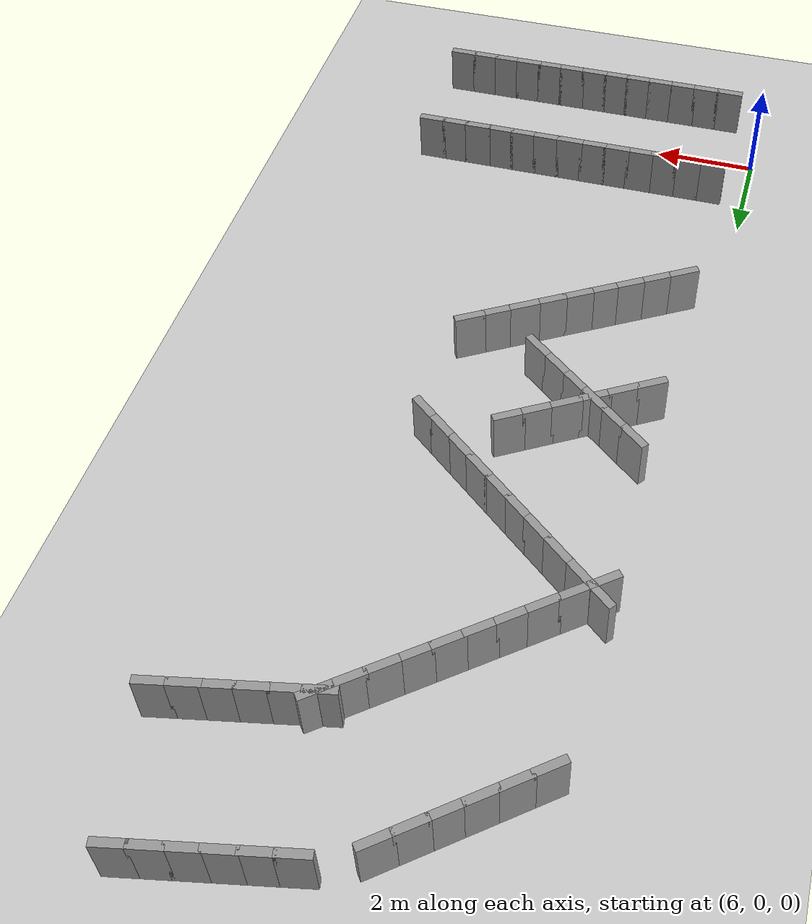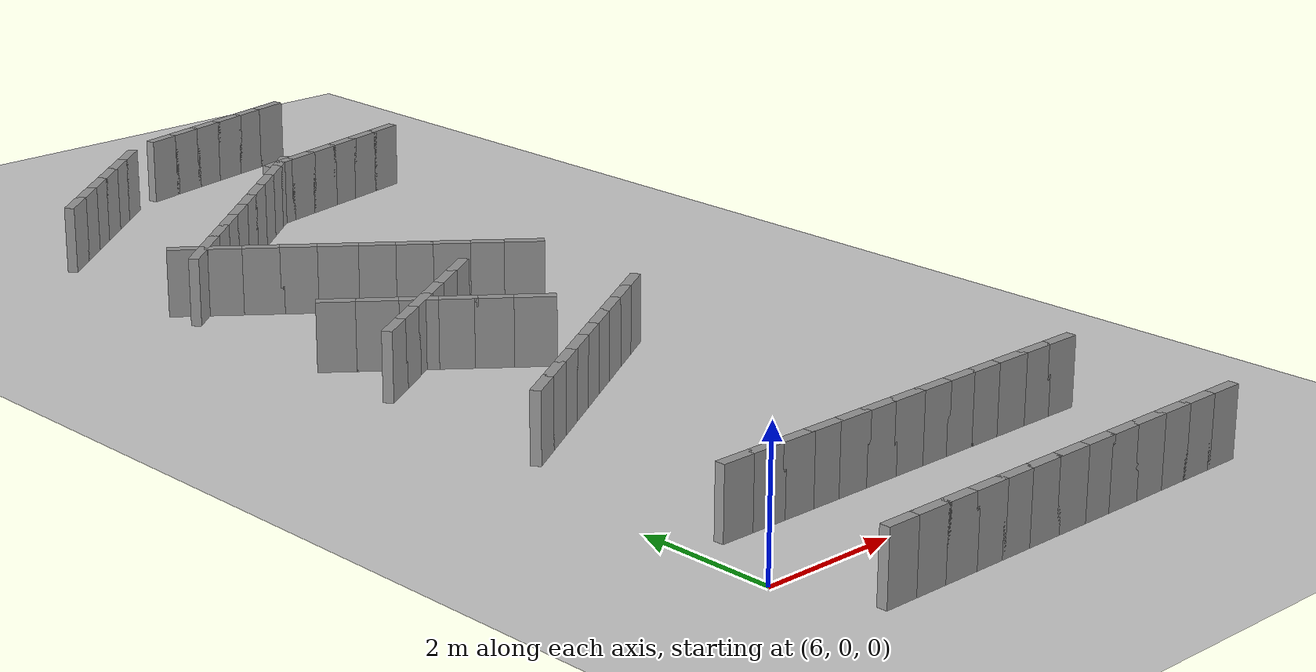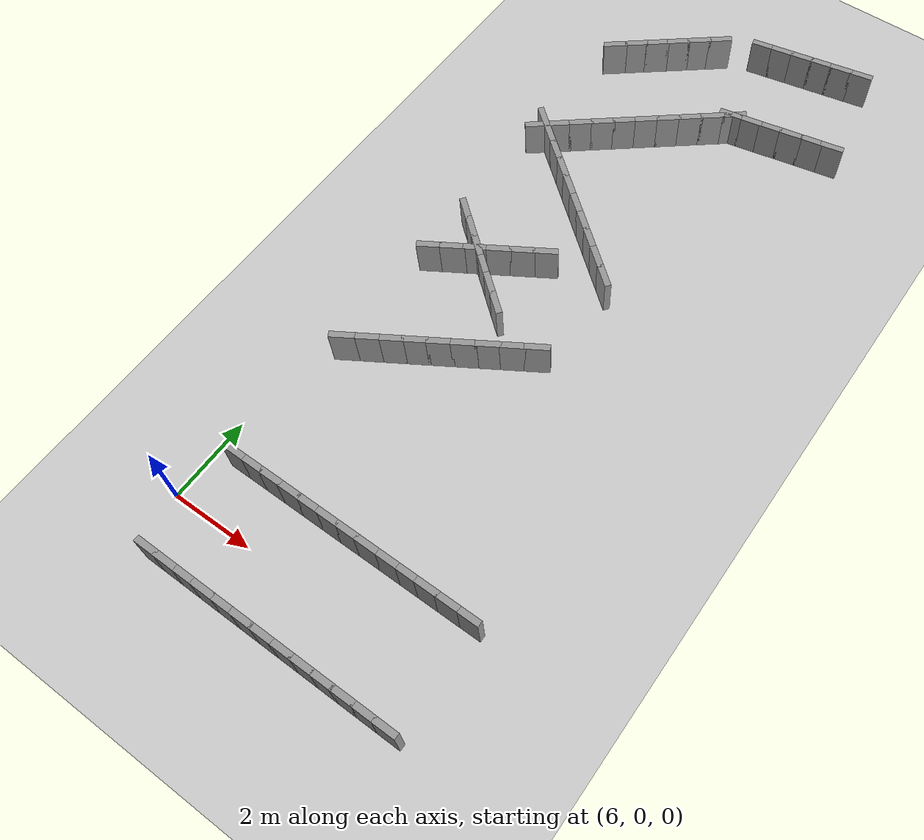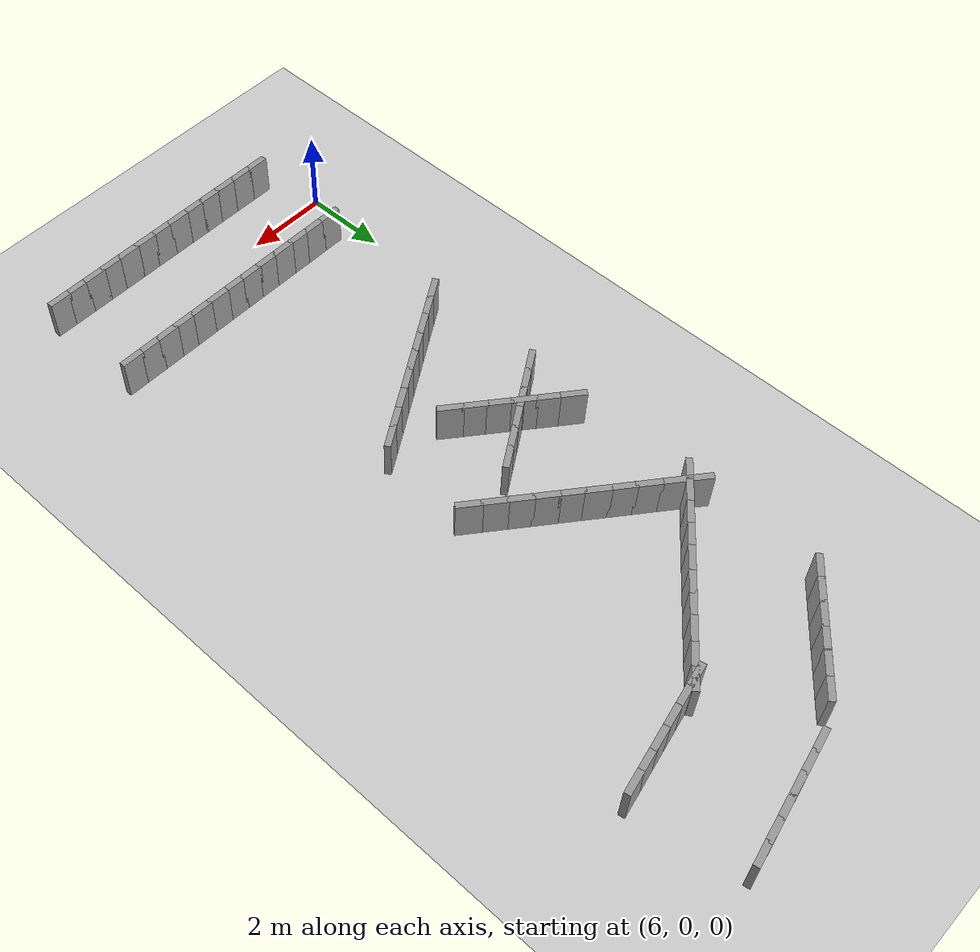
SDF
<sdf version="1.6">
 <world name="robot_harmonic_track">
  <include><uri>model://sun</uri></include>
  <include><uri>model://ground_plane</uri></include>
  <model name="wall_inner_13">
   <pose>6.75 1.25 0.5 0 0 0.0</pose>
   <static>1</static>
   <link name="link">
    <collision name="collision"><geometry><box><size>0.55 0.15 1.0</size></box></geometry></collision>
    <visual name="visual">
     <geometry><box><size>0.55 0.15 1.0</size></box></geometry>
     <material>
      <script><uri>file://media/materials/scripts/gazebo.material</uri><name>Gazebo/Grey</name></script>
     </material>
    </visual>
   </link>
  </model>
  <model name="wall_outer_13">
   <pose>6.75 -1.25 0.5 0 0 0.0</pose>
   <static>1</static>
   <link name="link">
    <collision name="collision"><geometry><box><size>0.55 0.15 1.0</size></box></geometry></collision>
    <visual name="visual">
     <geometry><box><size>0.55 0.15 1.0</size></box></geometry>
     <material>
      <script><uri>file://media/materials/scripts/gazebo.material</uri><name>Gazebo/Grey</name></script>
     </material>
    </visual>
   </link>
  </model>
  <model name="wall_inner_14">
   <pose>7.25 1.25 0.5 0 0 0.0</pose>
   <static>1</static>
   <link name="link">
    <collision name="collision"><geometry><box><size>0.55 0.15 1.0</size></box></geometry></collision>
    <visual name="visual">
     <geometry><box><size>0.55 0.15 1.0</size></box></geometry>
     <material>
      <script><uri>file://media/materials/scripts/gazebo.material</uri><name>Gazebo/Grey</name></script>
     </material>
    </visual>
   </link>
  </model>
  <model name="wall_outer_14">
   <pose>7.25 -1.25 0.5 0 0 0.0</pose>
   <static>1</static>
   <link name="link">
    <collision name="collision"><geometry><box><size>0.55 0.15 1.0</size></box></geometry></collision>
    <visual name="visual">
     <geometry><box><size>0.55 0.15 1.0</size></box></geometry>
     <material>
      <script><uri>file://media/materials/scripts/gazebo.material</uri><name>Gazebo/Grey</name></script>
     </material>
    </visual>
   </link>
  </model>
  <model name="wall_inner_15">
   <pose>7.75 1.25 0.5 0 0 0.0</pose>
   <static>1</static>
   <link name="link">
    <collision name="collision"><geometry><box><size>0.55 0.15 1.0</size></box></geometry></collision>
    <visual name="visual">
     <geometry><box><size>0.55 0.15 1.0</size></box></geometry>
     <material>
      <script><uri>file://media/materials/scripts/gazebo.material</uri><name>Gazebo/Grey</name></script>
     </material>
    </visual>
   </link>
  </model>
  <model name="wall_outer_15">
   <pose>7.75 -1.25 0.5 0 0 0.0</pose>
   <static>1</static>
   <link name="link">
    <collision name="collision"><geometry><box><size>0.55 0.15 1.0</size></box></geometry></collision>
    <visual name="visual">
     <geometry><box><size>0.55 0.15 1.0</size></box></geometry>
     <material>
      <script><uri>file://media/materials/scripts/gazebo.material</uri><name>Gazebo/Grey</name></script>
     </material>
    </visual>
   </link>
  </model>
  <model name="wall_inner_16">
   <pose>8.25 1.25 0.5 0 0 0.0</pose>
   <static>1</static>
   <link name="link">
    <collision name="collision"><geometry><box><size>0.55 0.15 1.0</size></box></geometry></collision>
    <visual name="visual">
     <geometry><box><size>0.55 0.15 1.0</size></box></geometry>
     <material>
      <script><uri>file://media/materials/scripts/gazebo.material</uri><name>Gazebo/Grey</name></script>
     </material>
    </visual>
   </link>
  </model>
  <model name="wall_outer_16">
   <pose>8.25 -1.25 0.5 0 0 0.0</pose>
   <static>1</static>
   <link name="link">
    <collision name="collision"><geometry><box><size>0.55 0.15 1.0</size></box></geometry></collision>
    <visual name="visual">
     <geometry><box><size>0.55 0.15 1.0</size></box></geometry>
     <material>
      <script><uri>file://media/materials/scripts/gazebo.material</uri><name>Gazebo/Grey</name></script>
     </material>
    </visual>
   </link>
  </model>
  <model name="wall_inner_17">
   <pose>8.75 1.25 0.5 0 0 0.0</pose>
   <static>1</static>
   <link name="link">
    <collision name="collision"><geometry><box><size>0.55 0.15 1.0</size></box></geometry></collision>
    <visual name="visual">
     <geometry><box><size>0.55 0.15 1.0</size></box></geometry>
     <material>
      <script><uri>file://media/materials/scripts/gazebo.material</uri><name>Gazebo/Grey</name></script>
     </material>
    </visual>
   </link>
  </model>
  <model name="wall_outer_17">
   <pose>8.75 -1.25 0.5 0 0 0.0</pose>
   <static>1</static>
   <link name="link">
    <collision name="collision"><geometry><box><size>0.55 0.15 1.0</size></box></geometry></collision>
    <visual name="visual">
     <geometry><box><size>0.55 0.15 1.0</size></box></geometry>
     <material>
      <script><uri>file://media/materials/scripts/gazebo.material</uri><name>Gazebo/Grey</name></script>
     </material>
    </visual>
   </link>
  </model>
  <model name="wall_inner_18">
   <pose>9.25 1.25 0.5 0 0 0.0</pose>
   <static>1</static>
   <link name="link">
    <collision name="collision"><geometry><box><size>0.55 0.15 1.0</size></box></geometry></collision>
    <visual name="visual">
     <geometry><box><size>0.55 0.15 1.0</size></box></geometry>
     <material>
      <script><uri>file://media/materials/scripts/gazebo.material</uri><name>Gazebo/Grey</name></script>
     </material>
    </visual>
   </link>
  </model>
  <model name="wall_outer_18">
   <pose>9.25 -1.25 0.5 0 0 0.0</pose>
   <static>1</static>
   <link name="link">
    <collision name="collision"><geometry><box><size>0.55 0.15 1.0</size></box></geometry></collision>
    <visual name="visual">
     <geometry><box><size>0.55 0.15 1.0</size></box></geometry>
     <material>
      <script><uri>file://media/materials/scripts/gazebo.material</uri><name>Gazebo/Grey</name></script>
     </material>
    </visual>
   </link>
  </model>
  <model name="wall_inner_19">
   <pose>9.75 1.25 0.5 0 0 0.0</pose>
   <static>1</static>
   <link name="link">
    <collision name="collision"><geometry><box><size>0.55 0.15 1.0</size></box></geometry></collision>
    <visual name="visual">
     <geometry><box><size>0.55 0.15 1.0</size></box></geometry>
     <material>
      <script><uri>file://media/materials/scripts/gazebo.material</uri><name>Gazebo/Grey</name></script>
     </material>
    </visual>
   </link>
  </model>
  <model name="wall_outer_19">
   <pose>9.75 -1.25 0.5 0 0 0.0</pose>
   <static>1</static>
   <link name="link">
    <collision name="collision"><geometry><box><size>0.55 0.15 1.0</size></box></geometry></collision>
    <visual name="visual">
     <geometry><box><size>0.55 0.15 1.0</size></box></geometry>
     <material>
      <script><uri>file://media/materials/scripts/gazebo.material</uri><name>Gazebo/Grey</name></script>
     </material>
    </visual>
   </link>
  </model>
  <model name="wall_inner_20">
   <pose>10.25 1.25 0.5 0 0 0.0</pose>
   <static>1</static>
   <link name="link">
    <collision name="collision"><geometry><box><size>0.55 0.15 1.0</size></box></geometry></collision>
    <visual name="visual">
     <geometry><box><size>0.55 0.15 1.0</size></box></geometry>
     <material>
      <script><uri>file://media/materials/scripts/gazebo.material</uri><name>Gazebo/Grey</name></script>
     </material>
    </visual>
   </link>
  </model>
  <model name="wall_outer_20">
   <pose>10.25 -1.25 0.5 0 0 0.0</pose>
   <static>1</static>
   <link name="link">
    <collision name="collision"><geometry><box><size>0.55 0.15 1.0</size></box></geometry></collision>
    <visual name="visual">
     <geometry><box><size>0.55 0.15 1.0</size></box></geometry>
     <material>
      <script><uri>file://media/materials/scripts/gazebo.material</uri><name>Gazebo/Grey</name></script>
     </material>
    </visual>
   </link>
  </model>
  <model name="wall_inner_21">
   <pose>10.75 1.25 0.5 0 0 0.0</pose>
   <static>1</static>
   <link name="link">
    <collision name="collision"><geometry><box><size>0.55 0.15 1.0</size></box></geometry></collision>
    <visual name="visual">
     <geometry><box><size>0.55 0.15 1.0</size></box></geometry>
     <material>
      <script><uri>file://media/materials/scripts/gazebo.material</uri><name>Gazebo/Grey</name></script>
     </material>
    </visual>
   </link>
  </model>
  <model name="wall_outer_21">
   <pose>10.75 -1.25 0.5 0 0 0.0</pose>
   <static>1</static>
   <link name="link">
    <collision name="collision"><geometry><box><size>0.55 0.15 1.0</size></box></geometry></collision>
    <visual name="visual">
     <geometry><box><size>0.55 0.15 1.0</size></box></geometry>
     <material>
      <script><uri>file://media/materials/scripts/gazebo.material</uri><name>Gazebo/Grey</name></script>
     </material>
    </visual>
   </link>
  </model>
  <model name="wall_inner_22">
   <pose>11.25 1.25 0.5 0 0 0.0</pose>
   <static>1</static>
   <link name="link">
    <collision name="collision"><geometry><box><size>0.55 0.15 1.0</size></box></geometry></collision>
    <visual name="visual">
     <geometry><box><size>0.55 0.15 1.0</size></box></geometry>
     <material>
      <script><uri>file://media/materials/scripts/gazebo.material</uri><name>Gazebo/Grey</name></script>
     </material>
    </visual>
   </link>
  </model>
  <model name="wall_outer_22">
   <pose>11.25 -1.25 0.5 0 0 0.0</pose>
   <static>1</static>
   <link name="link">
    <collision name="collision"><geometry><box><size>0.55 0.15 1.0</size></box></geometry></collision>
    <visual name="visual">
     <geometry><box><size>0.55 0.15 1.0</size></box></geometry>
     <material>
      <script><uri>file://media/materials/scripts/gazebo.material</uri><name>Gazebo/Grey</name></script>
     </material>
    </visual>
   </link>
  </model>
  <model name="wall_inner_23">
   <pose>11.75 1.25 0.5 0 0 0.0</pose>
   <static>1</static>
   <link name="link">
    <collision name="collision"><geometry><box><size>0.55 0.15 1.0</size></box></geometry></collision>
    <visual name="visual">
     <geometry><box><size>0.55 0.15 1.0</size></box></geometry>
     <material>
      <script><uri>file://media/materials/scripts/gazebo.material</uri><name>Gazebo/Grey</name></script>
     </material>
    </visual>
   </link>
  </model>
  <model name="wall_outer_23">
   <pose>11.75 -1.25 0.5 0 0 0.0</pose>
   <static>1</static>
   <link name="link">
    <collision name="collision"><geometry><box><size>0.55 0.15 1.0</size></box></geometry></collision>
    <visual name="visual">
     <geometry><box><size>0.55 0.15 1.0</size></box></geometry>
     <material>
      <script><uri>file://media/materials/scripts/gazebo.material</uri><name>Gazebo/Grey</name></script>
     </material>
    </visual>
   </link>
  </model>
  <model name="wall_inner_24">
   <pose>12.25 1.25 0.5 0 0 0.0</pose>
   <static>1</static>
   <link name="link">
    <collision name="collision"><geometry><box><size>0.55 0.15 1.0</size></box></geometry></collision>
    <visual name="visual">
     <geometry><box><size>0.55 0.15 1.0</size></box></geometry>
     <material>
      <script><uri>file://media/materials/scripts/gazebo.material</uri><name>Gazebo/Grey</name></script>
     </material>
    </visual>
   </link>
  </model>
  <model name="wall_outer_24">
   <pose>12.25 -1.25 0.5 0 0 0.0</pose>
   <static>1</static>
   <link name="link">
    <collision name="collision"><geometry><box><size>0.55 0.15 1.0</size></box></geometry></collision>
    <visual name="visual">
     <geometry><box><size>0.55 0.15 1.0</size></box></geometry>
     <material>
      <script><uri>file://media/materials/scripts/gazebo.material</uri><name>Gazebo/Grey</name></script>
     </material>
    </visual>
   </link>
  </model>
  <model name="wall_inner_25">
   <pose>12.75 1.25 0.5 0 0 0.0</pose>
   <static>1</static>
   <link name="link">
    <collision name="collision"><geometry><box><size>0.55 0.15 1.0</size></box></geometry></collision>
    <visual name="visual">
     <geometry><box><size>0.55 0.15 1.0</size></box></geometry>
     <material>
      <script><uri>file://media/materials/scripts/gazebo.material</uri><name>Gazebo/Grey</name></script>
     </material>
    </visual>
   </link>
  </model>
  <model name="wall_outer_25">
   <pose>12.75 -1.25 0.5 0 0 0.0</pose>
   <static>1</static>
   <link name="link">
    <collision name="collision"><geometry><box><size>0.55 0.15 1.0</size></box></geometry></collision>
    <visual name="visual">
     <geometry><box><size>0.55 0.15 1.0</size></box></geometry>
     <material>
      <script><uri>file://media/materials/scripts/gazebo.material</uri><name>Gazebo/Grey</name></script>
     </material>
    </visual>
   </link>
  </model>
  <model name="wall_inner_110">
   <pose>12.995145168922734 15.324274155386352 0.5 0 0 -2.9441970937399096</pose>
   <static>1</static>
   <link name="link">
    <collision name="collision">
     <geometry><box><size>0.5599019513592788 0.15 1.0</size></box></geometry>
    </collision>
    <visual name="visual">
     <geometry><box><size>0.5599019513592788 0.15 1.0</size></box></geometry>
     <material>
      <script><uri>file://media/materials/scripts/gazebo.material</uri><name>Gazebo/Grey</name></script>
     </material>
    </visual>
   </link>
  </model>
  <model name="wall_outer_110">
   <pose>12.504854831077266 17.77572584461365 0.5 0 0 -2.9441970937399096</pose>
   <static>1</static>
   <link name="link">
    <collision name="collision">
     <geometry><box><size>0.5599019513592788 0.15 1.0</size></box></geometry>
    </collision>
    <visual name="visual">
     <geometry><box><size>0.5599019513592788 0.15 1.0</size></box></geometry>
     <material>
      <script><uri>file://media/materials/scripts/gazebo.material</uri><name>Gazebo/Grey</name></script>
     </material>
    </visual>
   </link>
  </model>
  <model name="wall_inner_111">
   <pose>12.495145168922734 15.22427415538635 0.5 0 0 -2.9441970937399096</pose>
   <static>1</static>
   <link name="link">
    <collision name="collision">
     <geometry><box><size>0.5599019513592788 0.15 1.0</size></box></geometry>
    </collision>
    <visual name="visual">
     <geometry><box><size>0.5599019513592788 0.15 1.0</size></box></geometry>
     <material>
      <script><uri>file://media/materials/scripts/gazebo.material</uri><name>Gazebo/Grey</name></script>
     </material>
    </visual>
   </link>
  </model>
  <model name="wall_outer_111">
   <pose>12.004854831077266 17.67572584461365 0.5 0 0 -2.9441970937399096</pose>
   <static>1</static>
   <link name="link">
    <collision name="collision">
     <geometry><box><size>0.5599019513592788 0.15 1.0</size></box></geometry>
    </collision>
    <visual name="visual">
     <geometry><box><size>0.5599019513592788 0.15 1.0</size></box></geometry>
     <material>
      <script><uri>file://media/materials/scripts/gazebo.material</uri><name>Gazebo/Grey</name></script>
     </material>
    </visual>
   </link>
  </model>
  <model name="wall_inner_112">
   <pose>11.995145168922726 15.12427415538635 0.5 0 0 -2.9441970937399167</pose>
   <static>1</static>
   <link name="link">
    <collision name="collision">
     <geometry><box><size>0.5599019513592781 0.15 1.0</size></box></geometry>
    </collision>
    <visual name="visual">
     <geometry><box><size>0.5599019513592781 0.15 1.0</size></box></geometry>
     <material>
      <script><uri>file://media/materials/scripts/gazebo.material</uri><name>Gazebo/Grey</name></script>
     </material>
    </visual>
   </link>
  </model>
  <model name="wall_outer_112">
   <pose>11.504854831077274 17.575725844613654 0.5 0 0 -2.9441970937399167</pose>
   <static>1</static>
   <link name="link">
    <collision name="collision">
     <geometry><box><size>0.5599019513592781 0.15 1.0</size></box></geometry>
    </collision>
    <visual name="visual">
     <geometry><box><size>0.5599019513592781 0.15 1.0</size></box></geometry>
     <material>
      <script><uri>file://media/materials/scripts/gazebo.material</uri><name>Gazebo/Grey</name></script>
     </material>
    </visual>
   </link>
  </model>
  <model name="wall_inner_113">
   <pose>11.495145168922734 15.024274155386351 0.5 0 0 -2.9441970937399096</pose>
   <static>1</static>
   <link name="link">
    <collision name="collision">
     <geometry><box><size>0.5599019513592788 0.15 1.0</size></box></geometry>
    </collision>
    <visual name="visual">
     <geometry><box><size>0.5599019513592788 0.15 1.0</size></box></geometry>
     <material>
      <script><uri>file://media/materials/scripts/gazebo.material</uri><name>Gazebo/Grey</name></script>
     </material>
    </visual>
   </link>
  </model>
  <model name="wall_outer_113">
   <pose>11.004854831077266 17.47572584461365 0.5 0 0 -2.9441970937399096</pose>
   <static>1</static>
   <link name="link">
    <collision name="collision">
     <geometry><box><size>0.5599019513592788 0.15 1.0</size></box></geometry>
    </collision>
    <visual name="visual">
     <geometry><box><size>0.5599019513592788 0.15 1.0</size></box></geometry>
     <material>
      <script><uri>file://media/materials/scripts/gazebo.material</uri><name>Gazebo/Grey</name></script>
     </material>
    </visual>
   </link>
  </model>
  <model name="wall_inner_114">
   <pose>10.995145168922726 14.924274155386348 0.5 0 0 -2.9441970937399167</pose>
   <static>1</static>
   <link name="link">
    <collision name="collision">
     <geometry><box><size>0.5599019513592781 0.15 1.0</size></box></geometry>
    </collision>
    <visual name="visual">
     <geometry><box><size>0.5599019513592781 0.15 1.0</size></box></geometry>
     <material>
      <script><uri>file://media/materials/scripts/gazebo.material</uri><name>Gazebo/Grey</name></script>
     </material>
    </visual>
   </link>
  </model>
  <model name="wall_outer_114">
   <pose>10.504854831077274 17.37572584461365 0.5 0 0 -2.9441970937399167</pose>
   <static>1</static>
   <link name="link">
    <collision name="collision">
     <geometry><box><size>0.5599019513592781 0.15 1.0</size></box></geometry>
    </collision>
    <visual name="visual">
     <geometry><box><size>0.5599019513592781 0.15 1.0</size></box></geometry>
     <material>
      <script><uri>file://media/materials/scripts/gazebo.material</uri><name>Gazebo/Grey</name></script>
     </material>
    </visual>
   </link>
  </model>
  <model name="wall_inner_115">
   <pose>10.495145168922734 14.824274155386352 0.5 0 0 -2.9441970937399096</pose>
   <static>1</static>
   <link name="link">
    <collision name="collision">
     <geometry><box><size>0.5599019513592788 0.15 1.0</size></box></geometry>
    </collision>
    <visual name="visual">
     <geometry><box><size>0.5599019513592788 0.15 1.0</size></box></geometry>
     <material>
      <script><uri>file://media/materials/scripts/gazebo.material</uri><name>Gazebo/Grey</name></script>
     </material>
    </visual>
   </link>
  </model>
  <model name="wall_outer_115">
   <pose>10.004854831077266 17.27572584461365 0.5 0 0 -2.9441970937399096</pose>
   <static>1</static>
   <link name="link">
    <collision name="collision">
     <geometry><box><size>0.5599019513592788 0.15 1.0</size></box></geometry>
    </collision>
    <visual name="visual">
     <geometry><box><size>0.5599019513592788 0.15 1.0</size></box></geometry>
     <material>
      <script><uri>file://media/materials/scripts/gazebo.material</uri><name>Gazebo/Grey</name></script>
     </material>
    </visual>
   </link>
  </model>
  <model name="wall_inner_116">
   <pose>10.5725354761097 14.857247321529545 0.5 0 0 -2.466851711366239</pose>
   <static>1</static>
   <link name="link">
    <collision name="collision">
     <geometry><box><size>0.5835936864527373 0.15 1.0</size></box></geometry>
    </collision>
    <visual name="visual">
     <geometry><box><size>0.5835936864527373 0.15 1.0</size></box></geometry>
     <material>
      <script><uri>file://media/materials/scripts/gazebo.material</uri><name>Gazebo/Grey</name></script>
     </material>
    </visual>
   </link>
  </model>
  <model name="wall_outer_116">
   <pose>9.010797857223636 16.80941934513712 0.5 0 0 -2.466851711366239</pose>
   <static>1</static>
   <link name="link">
    <collision name="collision">
     <geometry><box><size>0.5835936864527373 0.15 1.0</size></box></geometry>
    </collision>
    <visual name="visual">
     <geometry><box><size>0.5835936864527373 0.15 1.0</size></box></geometry>
     <material>
      <script><uri>file://media/materials/scripts/gazebo.material</uri><name>Gazebo/Grey</name></script>
     </material>
    </visual>
   </link>
  </model>
  <model name="wall_inner_117">
   <pose>10.155868809443028 14.52391398819621 0.5 0 0 -2.466851711366244</pose>
   <static>1</static>
   <link name="link">
    <collision name="collision">
     <geometry><box><size>0.5835936864527377 0.15 1.0</size></box></geometry>
    </collision>
    <visual name="visual">
     <geometry><box><size>0.5835936864527377 0.15 1.0</size></box></geometry>
     <material>
      <script><uri>file://media/materials/scripts/gazebo.material</uri><name>Gazebo/Grey</name></script>
     </material>
    </visual>
   </link>
  </model>
  <model name="wall_outer_117">
   <pose>8.594131190556972 16.47608601180379 0.5 0 0 -2.466851711366244</pose>
   <static>1</static>
   <link name="link">
    <collision name="collision">
     <geometry><box><size>0.5835936864527377 0.15 1.0</size></box></geometry>
    </collision>
    <visual name="visual">
     <geometry><box><size>0.5835936864527377 0.15 1.0</size></box></geometry>
     <material>
      <script><uri>file://media/materials/scripts/gazebo.material</uri><name>Gazebo/Grey</name></script>
     </material>
    </visual>
   </link>
  </model>
  <model name="wall_inner_118">
   <pose>9.739202142776364 14.190580654862881 0.5 0 0 -2.466851711366239</pose>
   <static>1</static>
   <link name="link">
    <collision name="collision">
     <geometry><box><size>0.5835936864527373 0.15 1.0</size></box></geometry>
    </collision>
    <visual name="visual">
     <geometry><box><size>0.5835936864527373 0.15 1.0</size></box></geometry>
     <material>
      <script><uri>file://media/materials/scripts/gazebo.material</uri><name>Gazebo/Grey</name></script>
     </material>
    </visual>
   </link>
  </model>
  <model name="wall_outer_118">
   <pose>8.1774645238903 16.142752678470455 0.5 0 0 -2.466851711366239</pose>
   <static>1</static>
   <link name="link">
    <collision name="collision">
     <geometry><box><size>0.5835936864527373 0.15 1.0</size></box></geometry>
    </collision>
    <visual name="visual">
     <geometry><box><size>0.5835936864527373 0.15 1.0</size></box></geometry>
     <material>
      <script><uri>file://media/materials/scripts/gazebo.material</uri><name>Gazebo/Grey</name></script>
     </material>
    </visual>
   </link>
  </model>
  <model name="wall_inner_119">
   <pose>9.3225354761097 13.857247321529545 0.5 0 0 -2.466851711366239</pose>
   <static>1</static>
   <link name="link">
    <collision name="collision">
     <geometry><box><size>0.5835936864527373 0.15 1.0</size></box></geometry>
    </collision>
    <visual name="visual">
     <geometry><box><size>0.5835936864527373 0.15 1.0</size></box></geometry>
     <material>
      <script><uri>file://media/materials/scripts/gazebo.material</uri><name>Gazebo/Grey</name></script>
     </material>
    </visual>
   </link>
  </model>
  <model name="wall_outer_119">
   <pose>7.760797857223636 15.809419345137119 0.5 0 0 -2.466851711366239</pose>
   <static>1</static>
   <link name="link">
    <collision name="collision">
     <geometry><box><size>0.5835936864527373 0.15 1.0</size></box></geometry>
    </collision>
    <visual name="visual">
     <geometry><box><size>0.5835936864527373 0.15 1.0</size></box></geometry>
     <material>
      <script><uri>file://media/materials/scripts/gazebo.material</uri><name>Gazebo/Grey</name></script>
     </material>
    </visual>
   </link>
  </model>
  <model name="wall_inner_120">
   <pose>8.905868809443028 13.52391398819621 0.5 0 0 -2.466851711366244</pose>
   <static>1</static>
   <link name="link">
    <collision name="collision">
     <geometry><box><size>0.5835936864527377 0.15 1.0</size></box></geometry>
    </collision>
    <visual name="visual">
     <geometry><box><size>0.5835936864527377 0.15 1.0</size></box></geometry>
     <material>
      <script><uri>file://media/materials/scripts/gazebo.material</uri><name>Gazebo/Grey</name></script>
     </material>
    </visual>
   </link>
  </model>
  <model name="wall_outer_120">
   <pose>7.344131190556973 15.47608601180379 0.5 0 0 -2.466851711366244</pose>
   <static>1</static>
   <link name="link">
    <collision name="collision">
     <geometry><box><size>0.5835936864527377 0.15 1.0</size></box></geometry>
    </collision>
    <visual name="visual">
     <geometry><box><size>0.5835936864527377 0.15 1.0</size></box></geometry>
     <material>
      <script><uri>file://media/materials/scripts/gazebo.material</uri><name>Gazebo/Grey</name></script>
     </material>
    </visual>
   </link>
  </model>
  <model name="wall_inner_121">
   <pose>8.489202142776366 13.190580654862881 0.5 0 0 -2.466851711366239</pose>
   <static>1</static>
   <link name="link">
    <collision name="collision">
     <geometry><box><size>0.5835936864527373 0.15 1.0</size></box></geometry>
    </collision>
    <visual name="visual">
     <geometry><box><size>0.5835936864527373 0.15 1.0</size></box></geometry>
     <material>
      <script><uri>file://media/materials/scripts/gazebo.material</uri><name>Gazebo/Grey</name></script>
     </material>
    </visual>
   </link>
  </model>
  <model name="wall_outer_121">
   <pose>6.927464523890301 15.142752678470455 0.5 0 0 -2.466851711366239</pose>
   <static>1</static>
   <link name="link">
    <collision name="collision">
     <geometry><box><size>0.5835936864527373 0.15 1.0</size></box></geometry>
    </collision>
    <visual name="visual">
     <geometry><box><size>0.5835936864527373 0.15 1.0</size></box></geometry>
     <material>
      <script><uri>file://media/materials/scripts/gazebo.material</uri><name>Gazebo/Grey</name></script>
     </material>
    </visual>
   </link>
  </model>
  <model name="wall_inner_122">
   <pose>8.072535476109696 12.857247321529545 0.5 0 0 -2.4668517113662403</pose>
   <static>1</static>
   <link name="link">
    <collision name="collision">
     <geometry><box><size>0.583593686452738 0.15 1.0</size></box></geometry>
    </collision>
    <visual name="visual">
     <geometry><box><size>0.583593686452738 0.15 1.0</size></box></geometry>
     <material>
      <script><uri>file://media/materials/scripts/gazebo.material</uri><name>Gazebo/Grey</name></script>
     </material>
    </visual>
   </link>
  </model>
  <model name="wall_inner_123">
   <pose>7.65586880944303 12.523913988196211 0.5 0 0 -2.4668517113662416</pose>
   <static>1</static>
   <link name="link">
    <collision name="collision">
     <geometry><box><size>0.5835936864527362 0.15 1.0</size></box></geometry>
    </collision>
    <visual name="visual">
     <geometry><box><size>0.5835936864527362 0.15 1.0</size></box></geometry>
     <material>
      <script><uri>file://media/materials/scripts/gazebo.material</uri><name>Gazebo/Grey</name></script>
     </material>
    </visual>
   </link>
  </model>
  <model name="wall_inner_124">
   <pose>7.239202142776365 12.190580654862881 0.5 0 0 -2.4668517113662403</pose>
   <static>1</static>
   <link name="link">
    <collision name="collision">
     <geometry><box><size>0.583593686452738 0.15 1.0</size></box></geometry>
    </collision>
    <visual name="visual">
     <geometry><box><size>0.583593686452738 0.15 1.0</size></box></geometry>
     <material>
      <script><uri>file://media/materials/scripts/gazebo.material</uri><name>Gazebo/Grey</name></script>
     </material>
    </visual>
   </link>
  </model>
  <model name="wall_inner_125">
   <pose>6.822535476109697 11.857247321529545 0.5 0 0 -2.4668517113662403</pose>
   <static>1</static>
   <link name="link">
    <collision name="collision">
     <geometry><box><size>0.583593686452738 0.15 1.0</size></box></geometry>
    </collision>
    <visual name="visual">
     <geometry><box><size>0.583593686452738 0.15 1.0</size></box></geometry>
     <material>
      <script><uri>file://media/materials/scripts/gazebo.material</uri><name>Gazebo/Grey</name></script>
     </material>
    </visual>
   </link>
  </model>
  <model name="wall_inner_130">
   <pose>6.822535476109697 12.142752678470455 0.5 0 0 -0.6747409422235532</pose>
   <static>1</static>
   <link name="link">
    <collision name="collision">
     <geometry><box><size>0.583593686452738 0.15 1.0</size></box></geometry>
    </collision>
    <visual name="visual">
     <geometry><box><size>0.583593686452738 0.15 1.0</size></box></geometry>
     <material>
      <script><uri>file://media/materials/scripts/gazebo.material</uri><name>Gazebo/Grey</name></script>
     </material>
    </visual>
   </link>
  </model>
  <model name="wall_inner_131">
   <pose>7.239202142776365 11.809419345137119 0.5 0 0 -0.6747409422235542</pose>
   <static>1</static>
   <link name="link">
    <collision name="collision">
     <geometry><box><size>0.5835936864527373 0.15 1.0</size></box></geometry>
    </collision>
    <visual name="visual">
     <geometry><box><size>0.5835936864527373 0.15 1.0</size></box></geometry>
     <material>
      <script><uri>file://media/materials/scripts/gazebo.material</uri><name>Gazebo/Grey</name></script>
     </material>
    </visual>
   </link>
  </model>
  <model name="wall_inner_132">
   <pose>7.655868809443027 11.47608601180379 0.5 0 0 -0.6747409422235495</pose>
   <static>1</static>
   <link name="link">
    <collision name="collision">
     <geometry><box><size>0.5835936864527377 0.15 1.0</size></box></geometry>
    </collision>
    <visual name="visual">
     <geometry><box><size>0.5835936864527377 0.15 1.0</size></box></geometry>
     <material>
      <script><uri>file://media/materials/scripts/gazebo.material</uri><name>Gazebo/Grey</name></script>
     </material>
    </visual>
   </link>
  </model>
  <model name="wall_inner_133">
   <pose>8.0725354761097 11.142752678470455 0.5 0 0 -0.6747409422235542</pose>
   <static>1</static>
   <link name="link">
    <collision name="collision">
     <geometry><box><size>0.5835936864527373 0.15 1.0</size></box></geometry>
    </collision>
    <visual name="visual">
     <geometry><box><size>0.5835936864527373 0.15 1.0</size></box></geometry>
     <material>
      <script><uri>file://media/materials/scripts/gazebo.material</uri><name>Gazebo/Grey</name></script>
     </material>
    </visual>
   </link>
  </model>
  <model name="wall_inner_134">
   <pose>8.489202142776364 10.809419345137119 0.5 0 0 -0.6747409422235532</pose>
   <static>1</static>
   <link name="link">
    <collision name="collision">
     <geometry><box><size>0.583593686452738 0.15 1.0</size></box></geometry>
    </collision>
    <visual name="visual">
     <geometry><box><size>0.583593686452738 0.15 1.0</size></box></geometry>
     <material>
      <script><uri>file://media/materials/scripts/gazebo.material</uri><name>Gazebo/Grey</name></script>
     </material>
    </visual>
   </link>
  </model>
  <model name="wall_outer_134">
   <pose>6.927464523890303 8.857247321529545 0.5 0 0 -0.6747409422235532</pose>
   <static>1</static>
   <link name="link">
    <collision name="collision">
     <geometry><box><size>0.583593686452738 0.15 1.0</size></box></geometry>
    </collision>
    <visual name="visual">
     <geometry><box><size>0.583593686452738 0.15 1.0</size></box></geometry>
     <material>
      <script><uri>file://media/materials/scripts/gazebo.material</uri><name>Gazebo/Grey</name></script>
     </material>
    </visual>
   </link>
  </model>
  <model name="wall_inner_135">
   <pose>8.90586880944303 10.476086011803789 0.5 0 0 -0.6747409422235526</pose>
   <static>1</static>
   <link name="link">
    <collision name="collision">
     <geometry><box><size>0.5835936864527356 0.15 1.0</size></box></geometry>
    </collision>
    <visual name="visual">
     <geometry><box><size>0.5835936864527356 0.15 1.0</size></box></geometry>
     <material>
      <script><uri>file://media/materials/scripts/gazebo.material</uri><name>Gazebo/Grey</name></script>
     </material>
    </visual>
   </link>
  </model>
  <model name="wall_outer_135">
   <pose>7.344131190556969 8.523913988196211 0.5 0 0 -0.6747409422235526</pose>
   <static>1</static>
   <link name="link">
    <collision name="collision">
     <geometry><box><size>0.5835936864527356 0.15 1.0</size></box></geometry>
    </collision>
    <visual name="visual">
     <geometry><box><size>0.5835936864527356 0.15 1.0</size></box></geometry>
     <material>
      <script><uri>file://media/materials/scripts/gazebo.material</uri><name>Gazebo/Grey</name></script>
     </material>
    </visual>
   </link>
  </model>
  <model name="wall_inner_136">
   <pose>9.322535476109696 10.142752678470456 0.5 0 0 -0.6747409422235522</pose>
   <static>1</static>
   <link name="link">
    <collision name="collision">
     <geometry><box><size>0.5835936864527387 0.15 1.0</size></box></geometry>
    </collision>
    <visual name="visual">
     <geometry><box><size>0.5835936864527387 0.15 1.0</size></box></geometry>
     <material>
      <script><uri>file://media/materials/scripts/gazebo.material</uri><name>Gazebo/Grey</name></script>
     </material>
    </visual>
   </link>
  </model>
  <model name="wall_outer_136">
   <pose>7.760797857223636 8.19058065486288 0.5 0 0 -0.6747409422235522</pose>
   <static>1</static>
   <link name="link">
    <collision name="collision">
     <geometry><box><size>0.5835936864527387 0.15 1.0</size></box></geometry>
    </collision>
    <visual name="visual">
     <geometry><box><size>0.5835936864527387 0.15 1.0</size></box></geometry>
     <material>
      <script><uri>file://media/materials/scripts/gazebo.material</uri><name>Gazebo/Grey</name></script>
     </material>
    </visual>
   </link>
  </model>
  <model name="wall_inner_137">
   <pose>9.739202142776364 9.80941934513712 0.5 0 0 -0.6747409422235522</pose>
   <static>1</static>
   <link name="link">
    <collision name="collision">
     <geometry><box><size>0.5835936864527387 0.15 1.0</size></box></geometry>
    </collision>
    <visual name="visual">
     <geometry><box><size>0.5835936864527387 0.15 1.0</size></box></geometry>
     <material>
      <script><uri>file://media/materials/scripts/gazebo.material</uri><name>Gazebo/Grey</name></script>
     </material>
    </visual>
   </link>
  </model>
  <model name="wall_outer_137">
   <pose>8.177464523890304 7.8572473215295435 0.5 0 0 -0.6747409422235522</pose>
   <static>1</static>
   <link name="link">
    <collision name="collision">
     <geometry><box><size>0.5835936864527387 0.15 1.0</size></box></geometry>
    </collision>
    <visual name="visual">
     <geometry><box><size>0.5835936864527387 0.15 1.0</size></box></geometry>
     <material>
      <script><uri>file://media/materials/scripts/gazebo.material</uri><name>Gazebo/Grey</name></script>
     </material>
    </visual>
   </link>
  </model>
  <model name="wall_inner_138">
   <pose>10.155868809443032 9.476086011803787 0.5 0 0 -0.6747409422235537</pose>
   <static>1</static>
   <link name="link">
    <collision name="collision">
     <geometry><box><size>0.5835936864527348 0.15 1.0</size></box></geometry>
    </collision>
    <visual name="visual">
     <geometry><box><size>0.5835936864527348 0.15 1.0</size></box></geometry>
     <material>
      <script><uri>file://media/materials/scripts/gazebo.material</uri><name>Gazebo/Grey</name></script>
     </material>
    </visual>
   </link>
  </model>
  <model name="wall_outer_138">
   <pose>8.594131190556968 7.523913988196213 0.5 0 0 -0.6747409422235537</pose>
   <static>1</static>
   <link name="link">
    <collision name="collision">
     <geometry><box><size>0.5835936864527348 0.15 1.0</size></box></geometry>
    </collision>
    <visual name="visual">
     <geometry><box><size>0.5835936864527348 0.15 1.0</size></box></geometry>
     <material>
      <script><uri>file://media/materials/scripts/gazebo.material</uri><name>Gazebo/Grey</name></script>
     </material>
    </visual>
   </link>
  </model>
  <model name="wall_inner_139">
   <pose>10.572535476109696 9.142752678470456 0.5 0 0 -0.6747409422235522</pose>
   <static>1</static>
   <link name="link">
    <collision name="collision">
     <geometry><box><size>0.5835936864527387 0.15 1.0</size></box></geometry>
    </collision>
    <visual name="visual">
     <geometry><box><size>0.5835936864527387 0.15 1.0</size></box></geometry>
     <material>
      <script><uri>file://media/materials/scripts/gazebo.material</uri><name>Gazebo/Grey</name></script>
     </material>
    </visual>
   </link>
  </model>
  <model name="wall_outer_139">
   <pose>9.010797857223636 7.190580654862879 0.5 0 0 -0.6747409422235522</pose>
   <static>1</static>
   <link name="link">
    <collision name="collision">
     <geometry><box><size>0.5835936864527387 0.15 1.0</size></box></geometry>
    </collision>
    <visual name="visual">
     <geometry><box><size>0.5835936864527387 0.15 1.0</size></box></geometry>
     <material>
      <script><uri>file://media/materials/scripts/gazebo.material</uri><name>Gazebo/Grey</name></script>
     </material>
    </visual>
   </link>
  </model>
  <model name="wall_inner_140">
   <pose>10.415846967011682 6.791770206495682 0.5 0 0 -2.60117315331921</pose>
   <static>1</static>
   <link name="link">
    <collision name="collision">
     <geometry><box><size>0.5800865358950277 0.15 1.0</size></box></geometry>
    </collision>
    <visual name="visual">
     <geometry><box><size>0.5800865358950277 0.15 1.0</size></box></geometry>
     <material>
      <script><uri>file://media/materials/scripts/gazebo.material</uri><name>Gazebo/Grey</name></script>
     </material>
    </visual>
   </link>
  </model>
  <model name="wall_outer_140">
   <pose>9.129607578442865 8.935502520777044 0.5 0 0 -2.60117315331921</pose>
   <static>1</static>
   <link name="link">
    <collision name="collision">
     <geometry><box><size>0.5800865358950277 0.15 1.0</size></box></geometry>
    </collision>
    <visual name="visual">
     <geometry><box><size>0.5800865358950277 0.15 1.0</size></box></geometry>
     <material>
      <script><uri>file://media/materials/scripts/gazebo.material</uri><name>Gazebo/Grey</name></script>
     </material>
    </visual>
   </link>
  </model>
  <model name="wall_inner_141">
   <pose>9.961301512466225 6.519042933768411 0.5 0 0 -2.60117315331921</pose>
   <static>1</static>
   <link name="link">
    <collision name="collision">
     <geometry><box><size>0.5800865358950277 0.15 1.0</size></box></geometry>
    </collision>
    <visual name="visual">
     <geometry><box><size>0.5800865358950277 0.15 1.0</size></box></geometry>
     <material>
      <script><uri>file://media/materials/scripts/gazebo.material</uri><name>Gazebo/Grey</name></script>
     </material>
    </visual>
   </link>
  </model>
  <model name="wall_outer_141">
   <pose>8.675062123897408 8.662775248049773 0.5 0 0 -2.60117315331921</pose>
   <static>1</static>
   <link name="link">
    <collision name="collision">
     <geometry><box><size>0.5800865358950277 0.15 1.0</size></box></geometry>
    </collision>
    <visual name="visual">
     <geometry><box><size>0.5800865358950277 0.15 1.0</size></box></geometry>
     <material>
      <script><uri>file://media/materials/scripts/gazebo.material</uri><name>Gazebo/Grey</name></script>
     </material>
    </visual>
   </link>
  </model>
  <model name="wall_inner_142">
   <pose>9.506756057920773 6.246315661041139 0.5 0 0 -2.601173153319207</pose>
   <static>1</static>
   <link name="link">
    <collision name="collision">
     <geometry><box><size>0.5800865358950266 0.15 1.0</size></box></geometry>
    </collision>
    <visual name="visual">
     <geometry><box><size>0.5800865358950266 0.15 1.0</size></box></geometry>
     <material>
      <script><uri>file://media/materials/scripts/gazebo.material</uri><name>Gazebo/Grey</name></script>
     </material>
    </visual>
   </link>
  </model>
  <model name="wall_outer_142">
   <pose>8.220516669351953 8.390047975322497 0.5 0 0 -2.601173153319207</pose>
   <static>1</static>
   <link name="link">
    <collision name="collision">
     <geometry><box><size>0.5800865358950266 0.15 1.0</size></box></geometry>
    </collision>
    <visual name="visual">
     <geometry><box><size>0.5800865358950266 0.15 1.0</size></box></geometry>
     <material>
      <script><uri>file://media/materials/scripts/gazebo.material</uri><name>Gazebo/Grey</name></script>
     </material>
    </visual>
   </link>
  </model>
  <model name="wall_inner_143">
   <pose>9.052210603375318 5.973588388313864 0.5 0 0 -2.60117315331921</pose>
   <static>1</static>
   <link name="link">
    <collision name="collision">
     <geometry><box><size>0.5800865358950277 0.15 1.0</size></box></geometry>
    </collision>
    <visual name="visual">
     <geometry><box><size>0.5800865358950277 0.15 1.0</size></box></geometry>
     <material>
      <script><uri>file://media/materials/scripts/gazebo.material</uri><name>Gazebo/Grey</name></script>
     </material>
    </visual>
   </link>
  </model>
  <model name="wall_outer_143">
   <pose>7.765971214806503 8.117320702595226 0.5 0 0 -2.60117315331921</pose>
   <static>1</static>
   <link name="link">
    <collision name="collision">
     <geometry><box><size>0.5800865358950277 0.15 1.0</size></box></geometry>
    </collision>
    <visual name="visual">
     <geometry><box><size>0.5800865358950277 0.15 1.0</size></box></geometry>
     <material>
      <script><uri>file://media/materials/scripts/gazebo.material</uri><name>Gazebo/Grey</name></script>
     </material>
    </visual>
   </link>
  </model>
  <model name="wall_inner_144">
   <pose>8.597665148829863 5.700861115586593 0.5 0 0 -2.601173153319209</pose>
   <static>1</static>
   <link name="link">
    <collision name="collision">
     <geometry><box><size>0.5800865358950269 0.15 1.0</size></box></geometry>
    </collision>
    <visual name="visual">
     <geometry><box><size>0.5800865358950269 0.15 1.0</size></box></geometry>
     <material>
      <script><uri>file://media/materials/scripts/gazebo.material</uri><name>Gazebo/Grey</name></script>
     </material>
    </visual>
   </link>
  </model>
  <model name="wall_outer_144">
   <pose>7.311425760261047 7.844593429867953 0.5 0 0 -2.601173153319209</pose>
   <static>1</static>
   <link name="link">
    <collision name="collision">
     <geometry><box><size>0.5800865358950269 0.15 1.0</size></box></geometry>
    </collision>
    <visual name="visual">
     <geometry><box><size>0.5800865358950269 0.15 1.0</size></box></geometry>
     <material>
      <script><uri>file://media/materials/scripts/gazebo.material</uri><name>Gazebo/Grey</name></script>
     </material>
    </visual>
   </link>
  </model>
  <model name="wall_inner_145">
   <pose>8.14311969428441 5.428133842859321 0.5 0 0 -2.6011731533192077</pose>
   <static>1</static>
   <link name="link">
    <collision name="collision">
     <geometry><box><size>0.5800865358950273 0.15 1.0</size></box></geometry>
    </collision>
    <visual name="visual">
     <geometry><box><size>0.5800865358950273 0.15 1.0</size></box></geometry>
     <material>
      <script><uri>file://media/materials/scripts/gazebo.material</uri><name>Gazebo/Grey</name></script>
     </material>
    </visual>
   </link>
  </model>
  <model name="wall_outer_145">
   <pose>6.85688030571559 7.571866157140679 0.5 0 0 -2.6011731533192077</pose>
   <static>1</static>
   <link name="link">
    <collision name="collision">
     <geometry><box><size>0.5800865358950273 0.15 1.0</size></box></geometry>
    </collision>
    <visual name="visual">
     <geometry><box><size>0.5800865358950273 0.15 1.0</size></box></geometry>
     <material>
      <script><uri>file://media/materials/scripts/gazebo.material</uri><name>Gazebo/Grey</name></script>
     </material>
    </visual>
   </link>
  </model>
  <model name="wall_inner_146">
   <pose>7.688574239738953 5.155406570132046 0.5 0 0 -2.60117315331921</pose>
   <static>1</static>
   <link name="link">
    <collision name="collision">
     <geometry><box><size>0.5800865358950277 0.15 1.0</size></box></geometry>
    </collision>
    <visual name="visual">
     <geometry><box><size>0.5800865358950277 0.15 1.0</size></box></geometry>
     <material>
      <script><uri>file://media/materials/scripts/gazebo.material</uri><name>Gazebo/Grey</name></script>
     </material>
    </visual>
   </link>
  </model>
  <model name="wall_inner_147">
   <pose>7.234028785193498 4.882679297404774 0.5 0 0 -2.60117315331921</pose>
   <static>1</static>
   <link name="link">
    <collision name="collision">
     <geometry><box><size>0.5800865358950277 0.15 1.0</size></box></geometry>
    </collision>
    <visual name="visual">
     <geometry><box><size>0.5800865358950277 0.15 1.0</size></box></geometry>
     <material>
      <script><uri>file://media/materials/scripts/gazebo.material</uri><name>Gazebo/Grey</name></script>
     </material>
    </visual>
   </link>
  </model>
  <model name="wall_inner_148">
   <pose>6.779483330648047 4.6099520246775025 0.5 0 0 -2.6011731533192077</pose>
   <static>1</static>
   <link name="link">
    <collision name="collision">
     <geometry><box><size>0.5800865358950273 0.15 1.0</size></box></geometry>
    </collision>
    <visual name="visual">
     <geometry><box><size>0.5800865358950273 0.15 1.0</size></box></geometry>
     <material>
      <script><uri>file://media/materials/scripts/gazebo.material</uri><name>Gazebo/Grey</name></script>
     </material>
    </visual>
   </link>
  </model>
 </world>
</sdf>
